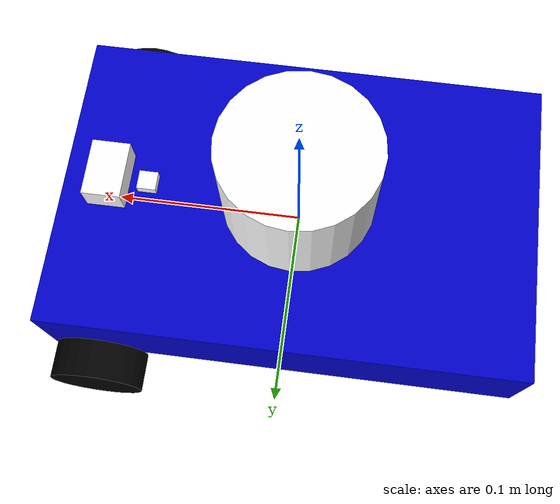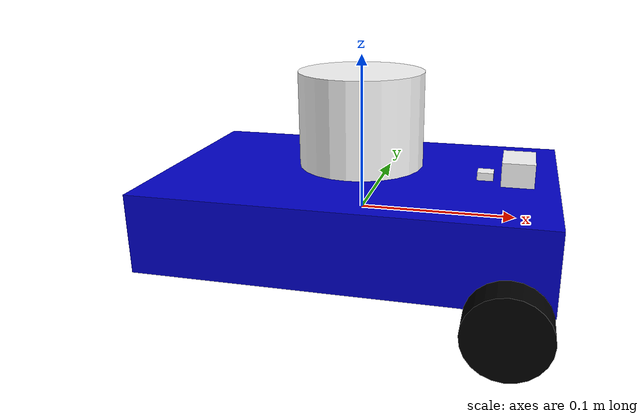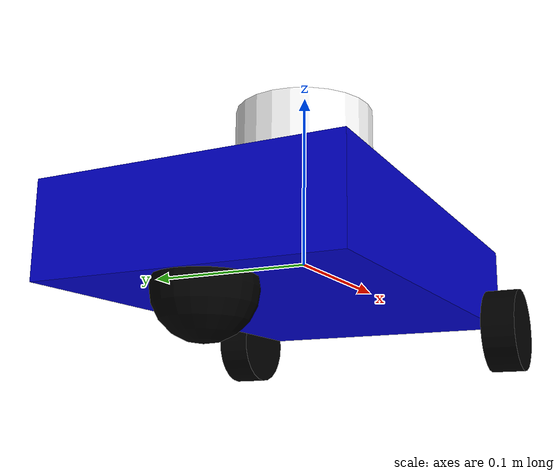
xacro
<?xml version="1.0"?>
<robot name="srobot" xmlns:xacro="http://ros.org/wiki/xacro">

  <xacro:include filename="$(find srobot_gazebo)/urdf/srobot.gazebo.xacro" />

  <link name="base_footprint"/>

  <joint name="base_joint" type="fixed">
    <parent link="base_footprint"/>
    <child link="base_link"/>
    <origin rpy="0 0 0" xyz="0 0 0"/>
  </joint>

  <link name="base_link">
    <inertial>
     <origin xyz="0 0 0" rpy="0 0 0"/>
     <mass value="0.1"/>
     <inertia ixx="0.0001"  ixy="0"  ixz="0" iyy="0.0001" iyz="0" izz="0.001" />
    </inertial>

    <visual>
      <geometry>
        <box size="0.25 0.16 0.05"/>
      </geometry>
      <origin rpy="0 0 0" xyz="0 0 0"/>
      <material name="blue">
          <color rgba="0 0 0.8 1"/>
      </material>
    </visual>

   <collision>
     <origin xyz="0 0 0" rpy="0 0 0"/>
     <geometry>
       <box size="0.25 0.16 0.05"/>
     </geometry>
   </collision>

  </link>

  <link name="right_wheel_link">
    <inertial>
     <origin xyz="0 0 0" rpy="0 0 0"/>
     <mass value="0.1"/>
     <inertia ixx="0.0001"  ixy="0"  ixz="0" iyy="0.0001" iyz="0" izz="0.0001" />
    </inertial>

    <visual>
      <geometry>
        <cylinder length="0.02" radius="0.025"/>
      </geometry>
      <material name="black">
        <color rgba="0 0 0 1"/>
      </material>
    </visual>

    <collision>
     <origin xyz="0 0 0" rpy="0 0 0"/>
     <geometry>
       <cylinder length="0.02" radius="0.025"/>
     </geometry>
    </collision>
  </link>

  <joint name="right_wheel_joint" type="continuous">
    <axis xyz="0 0 -1"/>
    <parent link="base_footprint"/>
    <child link="right_wheel_link"/>
    <origin rpy="1.5707 0 0" xyz=" 0.1 -0.09 -0.03"/>
  </joint>

  <link name="left_wheel_link">
    <inertial>
     <origin xyz="0 0 0" rpy="0 0 0"/>
     <mass value="0.1"/>
     <inertia ixx="0.0001"  ixy="0"  ixz="0" iyy="0.0001" iyz="0" izz="0.0001" />
    </inertial>

    <visual>
      <geometry>
        <cylinder length="0.02" radius="0.025"/>
      </geometry>
      <material name="black">
        <color rgba="0 0 0 1"/>
      </material>
    </visual>

    <collision>
     <origin xyz="0 0 0" rpy="0 0 0"/>
     <geometry>
       <cylinder length="0.02" radius="0.025"/>
     </geometry>
    </collision>
  </link>

  <joint name="left_wheel_joint" type="continuous">
    <axis xyz="0 0 -1"/>
    <parent link="base_footprint"/>
    <child link="left_wheel_link"/>
    <origin rpy="1.5707 0 0" xyz="0.1 0.09 -0.03"/>
  </joint>

  <link name="ball_wheel_link">
    <inertial>
     <origin xyz="0 0 0" rpy="0 0 0"/>
     <mass value="0.1"/>
     <inertia ixx="0"  ixy="0"  ixz="0" iyy="0" iyz="0" izz="0" />
    </inertial>

    <visual>
      <geometry>
        <sphere radius="0.025"/>
      </geometry>
      <material name="black">
        <color rgba="0 0 0 1"/>
      </material>
    </visual>

    <collision>
     <origin xyz="0 0 0" rpy="0 0 0"/>
     <geometry>
       <sphere radius="0.025"/>
     </geometry>
    </collision>
  </link>

  <joint name="ball_wheel_joint" type="fixed">
    <axis xyz="0 0 1"/>
    <parent link="base_footprint"/>
    <child link="ball_wheel_link"/>
    <origin rpy="0 0 0" xyz="-0.10 0 -0.03"/>
  </joint>
  <!-- imu sensor -->
  <link name="imu_link">
    <visual>
      <geometry>
        <box size="0.01 0.01 0.01"/>
      </geometry>
      <material name="white">
          <color rgba="1 1 1 1"/>
      </material>
    </visual>
  </link>

  <joint name="imu_joint" type="fixed">
    <parent link="base_footprint"/>
    <child link="imu_link"/>
    <origin xyz="0.08 0 0.025"/>
  </joint>

  <!-- camera -->
  <link name="base_camera_link">
    <visual>
      <geometry>
        <box size="0.02 0.03 0.03"/>
      </geometry>
      <material name="white">
          <color rgba="1 1 1 1"/>
      </material>
    </visual>
  </link>

  <joint name="camera_joint" type="fixed">
    <parent link="base_footprint"/>
    <child link="base_camera_link"/>
    <origin xyz="0.1 0 0.025"/>
  </joint>
  <!-- laser lidar -->
  <link name="base_laser_link">
    <visual>
      <geometry>
        <cylinder length="0.06" radius="0.04"/>
      </geometry>
      <material name="white">
          <color rgba="1 1 1 1"/>
      </material>
    </visual>
  </link>

  <joint name="laser_joint" type="fixed">
    <parent link="base_footprint"/>
    <child link="base_laser_link"/>
    <origin xyz="0 0.0 0.06"/>
  </joint>

  <!-- vlp 16 -->
  <xacro:include filename="$(find srobot_gazebo)/urdf/VLP-16.urdf.xacro"/>
  <xacro:VLP-16 parent="base_footprint" name="horizontal_vlp16_link" topic="/horizontal_vlp16_link" organize_cloud="false" hz="10" samples="400" gpu="false">
    <origin xyz="0. 0. 0.1" rpy="0. 0. 0." />
  </xacro:VLP-16>

  <xacro:VLP-16 parent="base_footprint" name="vertical_vlp16_link" topic="/vertical_vlp16_link" organize_cloud="false" hz="10" samples="400" gpu="false">
    <origin xyz="0.1 0. 0.1" rpy="0 0.8 0." />
  </xacro:VLP-16>

</robot>

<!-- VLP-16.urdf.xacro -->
<robot xmlns:xacro="http://www.ros.org/wiki/xacro" name="VLP-16">
  <xacro:property name="M_PI" value="3.1415926535897931" />
  <xacro:macro name="VLP-16" params="*origin parent:=base_link name:=velodyne topic:=/velodyne_points organize_cloud:=false hz:=10 lasers:=16 samples:=1875 collision_range:=0.3 min_range:=0.9 max_range:=130.0 noise:=0.001 min_angle:=-${M_PI} max_angle:=${M_PI} gpu:=false">

    <joint name="${name}_base_scan_joint" type="fixed" >
      <origin xyz="0 0 0" rpy="0 0 0" />
      <parent link="${parent}" />
      <child link="${name}"/>
    </joint>

    <link name="${name}">
    </link>

    <!-- Gazebo requires the velodyne_gazebo_plugins package -->
    <gazebo reference="${name}">
      <xacro:if value="${gpu}">
        <sensor type="gpu_ray" name="${name}-VLP16">
          <pose>0 0 0 0 0 0</pose>
          <visualize>false</visualize>
          <update_rate>${hz}</update_rate>
          <ray>
            <scan>
              <horizontal>
                <samples>${samples}</samples>
                <resolution>1</resolution>
                <min_angle>${min_angle}</min_angle>
                <max_angle>${max_angle}</max_angle>
              </horizontal>
              <vertical>
                <samples>${lasers}</samples>
                <resolution>1</resolution>
                <min_angle>-${15.0*M_PI/180.0}</min_angle>
                <max_angle> ${15.0*M_PI/180.0}</max_angle>
              </vertical>
            </scan>
            <range>
              <min>${collision_range}</min>
              <max>${max_range+1}</max>
              <resolution>0.001</resolution>
            </range>
            <noise>
              <type>gaussian</type>
              <mean>0.0</mean>
              <stddev>0.0</stddev>
            </noise>
          </ray>
          <plugin name="gazebo_ros_laser_controller" filename="libgazebo_ros_velodyne_gpu_laser.so">
            <topicName>${topic}</topicName>
            <frameName>${name}</frameName>
            <organize_cloud>${organize_cloud}</organize_cloud>
            <min_range>${min_range}</min_range>
            <max_range>${max_range}</max_range>
            <gaussianNoise>${noise}</gaussianNoise>
          </plugin>
        </sensor>
      </xacro:if>
      <xacro:unless value="${gpu}">
        <sensor type="ray" name="${name}-VLP16">
          <pose>0 0 0 0 0 0</pose>
          <visualize>false</visualize>
          <update_rate>${hz}</update_rate>
          <ray>
            <scan>
              <horizontal>
                <samples>${samples}</samples>
                <resolution>1</resolution>
                <min_angle>${min_angle}</min_angle>
                <max_angle>${max_angle}</max_angle>
              </horizontal>
              <vertical>
                <samples>${lasers}</samples>
                <resolution>1</resolution>
                <min_angle>-${15.0*M_PI/180.0}</min_angle>
                <max_angle> ${15.0*M_PI/180.0}</max_angle>
              </vertical>
            </scan>
            <range>
              <min>${collision_range}</min>
              <max>${max_range+1}</max>
              <resolution>0.001</resolution>
            </range>
            <noise>
              <type>gaussian</type>
              <mean>0.0</mean>
              <stddev>0.0</stddev>
            </noise>
          </ray>
          <plugin name="gazebo_ros_laser_controller" filename="libgazebo_ros_velodyne_laser.so">
            <topicName>${topic}</topicName>
            <frameName>${name}</frameName>
            <organize_cloud>${organize_cloud}</organize_cloud>
            <min_range>${min_range}</min_range>
            <max_range>${max_range}</max_range>
            <gaussianNoise>${noise}</gaussianNoise>
          </plugin>
        </sensor>
      </xacro:unless>
    </gazebo>

  </xacro:macro>
</robot>
